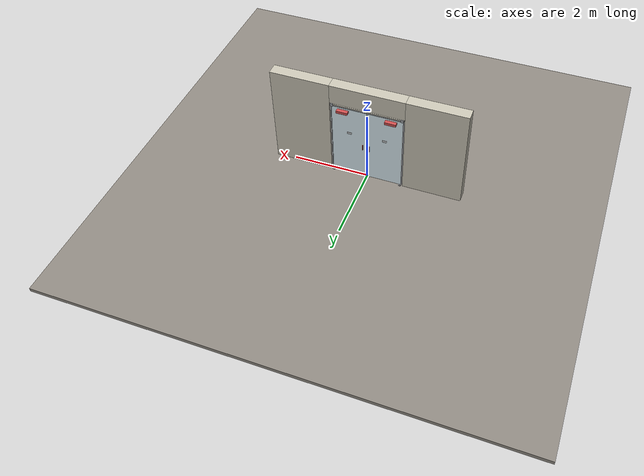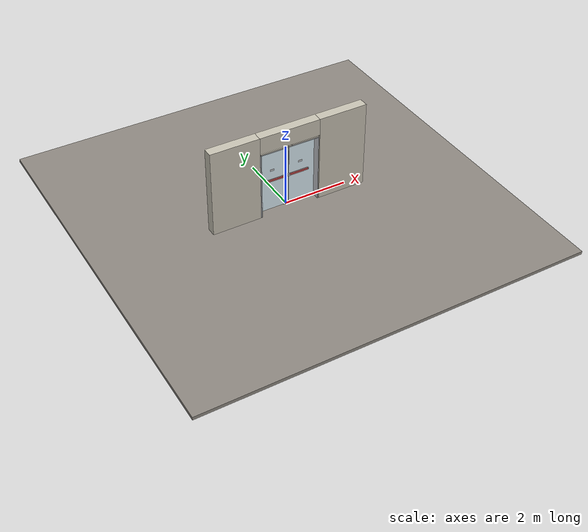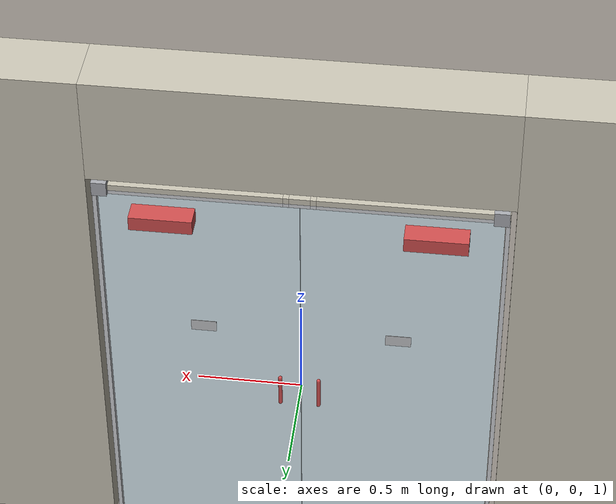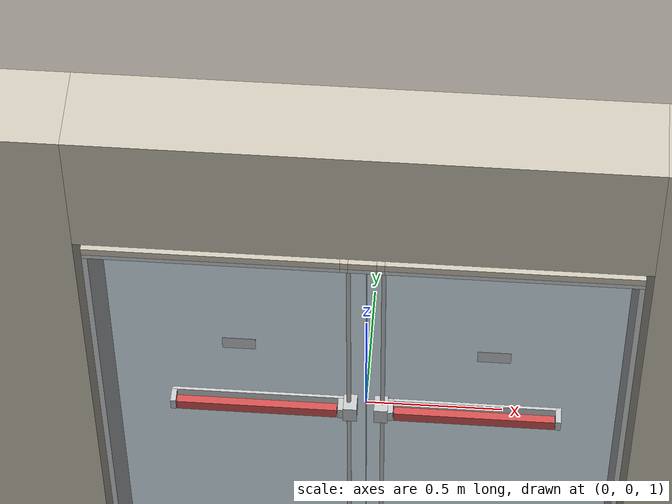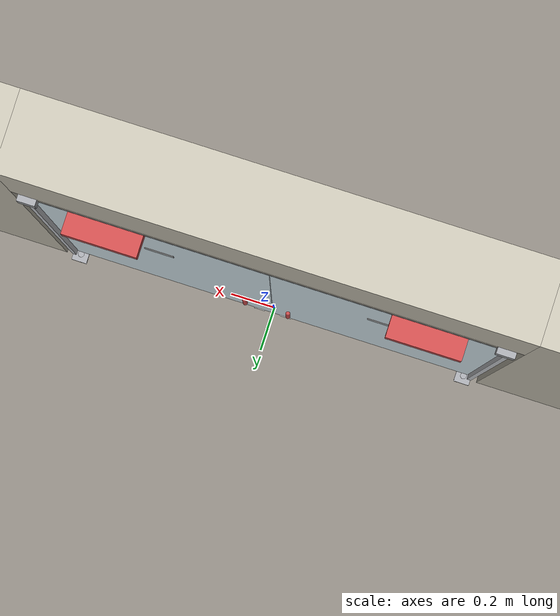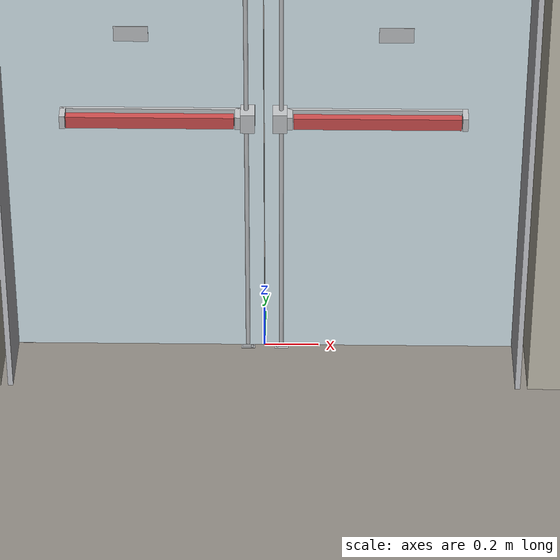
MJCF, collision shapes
<?xml version="1.0" ?>
<mujoco model="db0634_swing_double_full">
  <compiler angle="radian" meshdir="../../hardware" texturedir="../../textures" autolimits="true" inertiafromgeom="false"/>
  <option timestep="0.002" integrator="implicitfast" cone="elliptic" impratio="10" noslip_iterations="3">
    <flag multiccd="enable"/>
  </option>
  <size memory="16M"/>
  <default>
    <geom condim="4" solref="0.005 1" solimp="0.95 0.99 0.001"/>
    <joint solreflimit="0.005 1" solimplimit="0.95 0.99 0.001"/>
    <tendon solreflimit="0.005 1"/>
    <equality solref="0.002 1"/>
  </default>
  <visual>
    <headlight ambient="0.4 0.4 0.4" diffuse="0.7 0.7 0.7" specular="0.2 0.2 0.2"/>
    <quality shadowsize="4096"/>
    <map znear="0.01" zfar="60"/>
  </visual>
  <asset>
    <mesh name="closer_body_fdc4667657" file="closer_body_fdc4667657.obj"/>
    <mesh name="pull_1e5d69a91a" file="pull_1e5d69a91a.obj"/>
    <mesh name="touchbar_pad_2729a067b4" file="touchbar_pad_2729a067b4.obj"/>
    <material name="mat_floor" rgba="0.55 0.53 0.5 1" specular="0.2" shininess="0.15" reflectance="0"/>
    <material name="mat_wall" rgba="0.78 0.76 0.7 1" specular="0.2" shininess="0.1" reflectance="0"/>
    <material name="mat_leaf_a" rgba="0.85 0.92 0.95 0.25" specular="0.2" shininess="0.95" reflectance="0.1"/>
    <material name="mat_glass_leaf" rgba="0.85 0.92 0.95 0.25" specular="0.2" shininess="0.95" reflectance="0.1"/>
    <material name="mat_patch" rgba="0.75 0.76 0.77 1" specular="0.8" shininess="0.65" reflectance="0.4"/>
    <material name="mat_hinge" rgba="0.65 0.66 0.68 1" specular="0.74" shininess="0.5" reflectance="0.36"/>
    <material name="mat_op_stainless" rgba="0.75 0.76 0.77 1" specular="0.8" shininess="0.65" reflectance="0.4"/>
    <material name="mat_bolt" rgba="0.75 0.76 0.77 1" specular="0.8" shininess="0.65" reflectance="0.4"/>
    <material name="mat_closer" rgba="0.22 0.17 0.13 1" specular="0.8" shininess="0.6" reflectance="0.4"/>
    <material name="mat_sign" rgba="0.75 0.76 0.77 1" specular="0.8" shininess="0.65" reflectance="0.4"/>
    <material name="mat_leaf_b" rgba="0.85 0.92 0.95 0.25" specular="0.2" shininess="0.95" reflectance="0.1"/>
    <material name="mat_frame" rgba="0.8 0.81 0.83 1" specular="0.8" shininess="0.6" reflectance="0.4"/>
    <texture name="skybox" type="skybox" builtin="gradient" rgb1="0.6 0.7 0.85" rgb2="0.9 0.92 0.95" width="256" height="256"/>
  </asset>
  <worldbody>
    <light name="sun" pos="1.5 -2.5 4" dir="-0.3 0.5 -0.8" directional="true" diffuse="0.8 0.8 0.8" specular="0.3 0.3 0.3" castshadow="true"/>
    <light name="fill" pos="-1.5 2.5 3" dir="0.3 -0.5 -0.7" directional="true" diffuse="0.35 0.35 0.4" castshadow="false"/>
    <camera name="robot_view" pos="0 -2.745312 1.812087" xyaxes="1 0 0 0 0.26963 0.962964" fovy="52"/>
    <camera name="far_view" pos="0 2.530312 1.812087" xyaxes="-1 0 0 0 -0.26963 0.962964" fovy="52"/>
    <camera name="iso" pos="-2.004737 -2.323262 2.234138" xyaxes="0.741536 -0.670913 0 0.242917 0.268487 0.932151" fovy="46"/>
    <camera name="detail_handle" pos="0.0885 -0.7175 1.32" xyaxes="0.97561 0.219512 0 -0.070934 0.315262 0.94635" fovy="38"/>
    <geom name="floor" type="box" size="6 6 0.05" pos="0 0 -0.05" material="mat_floor" group="0" contype="1" conaffinity="1" friction="0.8 0.005 0.0001" density="2400"/>
    <geom name="wall_left" type="box" size="0.76825 0.15 1.3735" pos="-1.73175 -0.1075 1.3735" material="mat_wall" group="0" contype="1" conaffinity="1" friction="0.6 0.005 0.0001" density="800"/>
    <geom name="wall_right" type="box" size="0.76825 0.15 1.3735" pos="1.73175 -0.1075 1.3735" material="mat_wall" group="0" contype="1" conaffinity="1" friction="0.6 0.005 0.0001" density="800"/>
    <geom name="wall_header" type="box" size="0.9635 0.15 0.2625" pos="0 -0.1075 2.4845" material="mat_wall" group="0" contype="1" conaffinity="1" friction="0.6 0.005 0.0001" density="800"/>
    <geom name="pivot_bottom_socket" type="box" size="0.035 0.035 0.012" pos="-0.8995 0.0325 0.002" material="mat_hinge" group="1" contype="0" conaffinity="0" density="7850"/>
    <geom name="pivot_top_bracket" type="box" size="0.035 0.035 0.0355" pos="-0.8995 0.0325 2.1865" material="mat_hinge" group="1" contype="0" conaffinity="0" density="7850"/>
    <geom name="leaf_a_bottom_strike_plate" type="box" size="0.0255 0.0255 0.00075" pos="-0.0615 0 0.00075" material="mat_bolt" group="0" contype="1" conaffinity="1" friction="0.6 0.005 0.0001" density="7850"/>
    <geom name="leaf_a_bottom_strike_p" type="box" size="0.0215 0.004 0.00575" pos="-0.0615 0.0145 0.00725" material="mat_bolt" group="0" contype="1" conaffinity="1" friction="0.6 0.005 0.0001" density="7850"/>
    <geom name="leaf_a_bottom_strike_n" type="box" size="0.0215 0.004 0.00575" pos="-0.0615 -0.0145 0.00725" material="mat_bolt" group="0" contype="1" conaffinity="1" friction="0.6 0.005 0.0001" density="7850"/>
    <geom name="leaf_a_bottom_strike_e" type="box" size="0.004 0.0215 0.00575" pos="-0.047 0 0.00725" material="mat_bolt" group="0" contype="1" conaffinity="1" friction="0.6 0.005 0.0001" density="7850"/>
    <geom name="pivot_bottom_socket_2" type="box" size="0.035 0.035 0.012" pos="0.8995 0.0325 0.002" material="mat_hinge" group="1" contype="0" conaffinity="0" density="7850"/>
    <geom name="pivot_top_bracket_2" type="box" size="0.035 0.035 0.0355" pos="0.8995 0.0325 2.1865" material="mat_hinge" group="1" contype="0" conaffinity="0" density="7850"/>
    <geom name="leaf_b_bottom_strike_plate" type="box" size="0.0255 0.0255 0.00075" pos="0.0615 0 0.00075" material="mat_bolt" group="0" contype="1" conaffinity="1" friction="0.6 0.005 0.0001" density="7850"/>
    <geom name="leaf_b_bottom_strike_p" type="box" size="0.0215 0.004 0.00575" pos="0.0615 0.0145 0.00725" material="mat_bolt" group="0" contype="1" conaffinity="1" friction="0.6 0.005 0.0001" density="7850"/>
    <geom name="leaf_b_bottom_strike_n" type="box" size="0.0215 0.004 0.00575" pos="0.0615 -0.0145 0.00725" material="mat_bolt" group="0" contype="1" conaffinity="1" friction="0.6 0.005 0.0001" density="7850"/>
    <geom name="leaf_b_bottom_strike_e" type="box" size="0.004 0.0215 0.00575" pos="0.047 0 0.00725" material="mat_bolt" group="0" contype="1" conaffinity="1" friction="0.6 0.005 0.0001" density="7850"/>
    <geom name="jamb_l" type="box" size="0.0095 0.15 1.0735" pos="-0.928 -0.1075 1.0735" material="mat_frame" group="0" contype="1" conaffinity="1" friction="0.6 0.005 0.0001" density="300"/>
    <geom name="jamb_r" type="box" size="0.0095 0.15 1.0735" pos="0.928 -0.1075 1.0735" material="mat_frame" group="0" contype="1" conaffinity="1" friction="0.6 0.005 0.0001" density="300"/>
    <geom name="jamb_head_pwall_-61_n" type="box" size="0.0135 0.12325 0.0095" pos="-0.0615 -0.13425 2.1565" material="mat_frame" group="0" contype="1" conaffinity="1" friction="0.6 0.005 0.0001" density="300"/>
    <geom name="jamb_head_pwall_-61_p" type="box" size="0.0135 0.01575 0.0095" pos="-0.0615 0.02675 2.1565" material="mat_frame" group="0" contype="1" conaffinity="1" friction="0.6 0.005 0.0001" density="300"/>
    <geom name="jamb_head_pwall_61_n" type="box" size="0.0135 0.12325 0.0095" pos="0.0615 -0.13425 2.1565" material="mat_frame" group="0" contype="1" conaffinity="1" friction="0.6 0.005 0.0001" density="300"/>
    <geom name="jamb_head_pwall_61_p" type="box" size="0.0135 0.01575 0.0095" pos="0.0615 0.02675 2.1565" material="mat_frame" group="0" contype="1" conaffinity="1" friction="0.6 0.005 0.0001" density="300"/>
    <geom name="jamb_head_0" type="box" size="0.43125 0.15 0.0095" pos="-0.50625 -0.1075 2.1565" material="mat_frame" group="0" contype="1" conaffinity="1" friction="0.6 0.005 0.0001" density="300"/>
    <geom name="jamb_head_1" type="box" size="0.048 0.15 0.0095" pos="0 -0.1075 2.1565" material="mat_frame" group="0" contype="1" conaffinity="1" friction="0.6 0.005 0.0001" density="300"/>
    <geom name="jamb_head_2" type="box" size="0.43125 0.15 0.0095" pos="0.50625 -0.1075 2.1565" material="mat_frame" group="0" contype="1" conaffinity="1" friction="0.6 0.005 0.0001" density="300"/>
    <geom name="head_stud_pwall_-61_n" type="box" size="0.0135 0.12325 0.015" pos="-0.0615 -0.13425 2.181" material="mat_wall" group="0" contype="1" conaffinity="1" friction="0.6 0.005 0.0001" density="500"/>
    <geom name="head_stud_pwall_-61_p" type="box" size="0.0135 0.01575 0.015" pos="-0.0615 0.02675 2.181" material="mat_wall" group="0" contype="1" conaffinity="1" friction="0.6 0.005 0.0001" density="500"/>
    <geom name="head_stud_pback_-61" type="box" size="0.0135 0.011 0.013" pos="-0.0615 0 2.183" material="mat_wall" group="0" contype="1" conaffinity="1" friction="0.6 0.005 0.0001" density="500"/>
    <geom name="head_stud_pwall_61_n" type="box" size="0.0135 0.12325 0.015" pos="0.0615 -0.13425 2.181" material="mat_wall" group="0" contype="1" conaffinity="1" friction="0.6 0.005 0.0001" density="500"/>
    <geom name="head_stud_pwall_61_p" type="box" size="0.0135 0.01575 0.015" pos="0.0615 0.02675 2.181" material="mat_wall" group="0" contype="1" conaffinity="1" friction="0.6 0.005 0.0001" density="500"/>
    <geom name="head_stud_pback_61" type="box" size="0.0135 0.011 0.013" pos="0.0615 0 2.183" material="mat_wall" group="0" contype="1" conaffinity="1" friction="0.6 0.005 0.0001" density="500"/>
    <geom name="head_stud_0" type="box" size="0.43125 0.15 0.015" pos="-0.50625 -0.1075 2.181" material="mat_wall" group="0" contype="1" conaffinity="1" friction="0.6 0.005 0.0001" density="500"/>
    <geom name="head_stud_1" type="box" size="0.048 0.15 0.015" pos="0 -0.1075 2.181" material="mat_wall" group="0" contype="1" conaffinity="1" friction="0.6 0.005 0.0001" density="500"/>
    <geom name="head_stud_2" type="box" size="0.43125 0.15 0.015" pos="0.50625 -0.1075 2.181" material="mat_wall" group="0" contype="1" conaffinity="1" friction="0.6 0.005 0.0001" density="500"/>
    <site name="approach_point" pos="0 -1.5 0" quat="1 0 0 0" size="0.05" rgba="0.2 0.9 0.2 0.5" group="4"/>
    <site name="goal_point" pos="0 1.5 0" quat="1 0 0 0" size="0.05" rgba="0.2 0.9 0.2 0.5" group="4"/>
    <site name="door_plane_center" pos="0 0 1.0735" quat="1 0 0 0" size="0.02" rgba="0.2 0.9 0.2 0.5" group="4"/>
    <site name="approach_point_2" pos="0 -1.5 0" quat="1 0 0 0" size="0.05" rgba="0.2 0.9 0.2 0.5" group="4"/>
    <site name="goal_point_2" pos="0 1.5 0" quat="1 0 0 0" size="0.05" rgba="0.2 0.9 0.2 0.5" group="4"/>
    <site name="door_plane_center_2" pos="0 0 1.0735" quat="1 0 0 0" size="0.02" rgba="0.2 0.9 0.2 0.5" group="4"/>
    <site name="approach_point_3" pos="0 -1.5 0" quat="1 0 0 0" size="0.05" rgba="0.2 0.9 0.2 0.5" group="4"/>
    <site name="goal_point_3" pos="0 1.5 0" quat="1 0 0 0" size="0.05" rgba="0.2 0.9 0.2 0.5" group="4"/>
    <site name="door_plane_center_3" pos="0 0 1.0735" quat="1 0 0 0" size="0.02" rgba="0.2 0.9 0.2 0.5" group="4"/>
    <body name="leaf_a" pos="-0.9185 0 0">
      <inertial pos="0.454124 0.008662 1.226113" mass="99.12071" quat="-0.471093 0.496604 0.513367 0.5176" diaginertia="6.644286557 42.826254287 49.294823281"/>
      <joint name="leaf_a_hinge" type="hinge" axis="0 0 1" pos="0.019 0.0325 0" limited="true" range="0 1.570796" damping="12.268966" frictionloss="1.07718" stiffness="29.195383" springref="-2.330505" armature="0.02"/>
      <geom name="leaf_a_glass" type="box" size="0.457 0.0225 1.0635" pos="0.46 0 1.0795" material="mat_glass_leaf" group="0" contype="1" conaffinity="1" friction="0.4 0.005 0.0001" density="1"/>
      <geom name="pivot_bottom" type="cylinder" size="0.014 0.004" pos="0.019 0.0325 0.011" material="mat_hinge" group="1" contype="0" conaffinity="0" density="7850"/>
      <geom name="pivot_top" type="cylinder" size="0.014 0.004" pos="0.019 0.0325 2.147" material="mat_hinge" group="1" contype="0" conaffinity="0" density="7850"/>
      <geom name="leaf_a_exit_device_rail" type="box" size="0.31705 0.006 0.025" pos="0.51995 -0.0285 1.04" material="mat_op_stainless" group="0" contype="1" conaffinity="1" friction="0.6 0.005 0.0001" density="3000"/>
      <geom name="leaf_a_exit_device_rail_end_n" type="box" size="0.01 0.0325 0.025" pos="0.2129 -0.055 1.04" material="mat_op_stainless" group="0" contype="1" conaffinity="1" friction="0.6 0.005 0.0001" density="3000"/>
      <geom name="leaf_a_exit_device_rail_end_p" type="box" size="0.01 0.0325 0.025" pos="0.827 -0.055 1.04" material="mat_op_stainless" group="0" contype="1" conaffinity="1" friction="0.6 0.005 0.0001" density="3000"/>
      <geom name="leaf_a_exit_device_case" type="box" size="0.025 0.034125 0.0375" pos="0.862 -0.056625 1.04" material="mat_op_stainless" group="0" contype="1" conaffinity="1" friction="0.6 0.005 0.0001" density="3000"/>
      <geom name="leaf_a_exit_device_rod_top" type="cylinder" size="0.008 0.51775" pos="0.857 -0.0525 1.59525" material="mat_op_stainless" group="1" contype="0" conaffinity="0" density="7850"/>
      <geom name="leaf_a_exit_device_rod_bot" type="cylinder" size="0.008 0.47825" pos="0.857 -0.0525 0.52425" material="mat_op_stainless" group="1" contype="0" conaffinity="0" density="7850"/>
      <geom name="leaf_a_far_pull_p" type="mesh" mesh="pull_1e5d69a91a" pos="0.827 0.0225 1.04" quat="-0.707107 0.707107 0 0" material="mat_op_stainless" group="1" contype="0" conaffinity="0" density="3000"/>
      <geom name="leaf_a_far_pull_col_p" type="capsule" size="0.0095 0.08" pos="0.827 0.0825 1.04" material="mat_op_stainless" group="3" contype="1" conaffinity="1" rgba="0.8 0.3 0.3 0.25" friction="0.7 0.01 0.0001" density="3000"/>
      <geom name="closer_body" type="mesh" mesh="closer_body_fdc4667657" pos="0.3 0.0225 2.047" quat="-0.707107 0.707107 0 0" material="mat_closer" group="1" contype="0" conaffinity="0" density="2000"/>
      <geom name="closer_body_col" type="box" size="0.145 0.05 0.035" pos="0.3 0.0725 2.047" material="mat_closer" group="3" contype="1" conaffinity="1" rgba="0.8 0.3 0.3 0.25" friction="0.6 0.005 0.0001" density="2000"/>
      <geom name="sign_push" type="box" size="0.06 0.001 0.03" pos="0.46 -0.0235 1.366" material="mat_sign" group="2" contype="0" conaffinity="0" density="7900"/>
      <geom name="sign_pull" type="box" size="0.06 0.001 0.03" pos="0.46 0.0235 1.366" material="mat_sign" group="2" contype="0" conaffinity="0" density="7900"/>
      <site name="leaf_a_far_pull_grip_p" pos="0.827 0.0825 1.04" quat="1 0 0 0" size="0.012" rgba="0.2 0.9 0.2 0.5" group="4"/>
      <site name="leaf_a_edge_mid" pos="0.917 0 1.0635" quat="1 0 0 0" size="0.02" rgba="0.2 0.9 0.2 0.5" group="4"/>
      <body name="leaf_a_exit_device" pos="0.51995 -0.0225 1.04">
        <inertial pos="0 -0.05 0" mass="4.76361" quat="0 0 0.707107 0.707107" diaginertia="0.00116113 0.137653089 0.138099678"/>
        <joint name="leaf_a_exit_device_slide" type="slide" axis="0 1 0" limited="true" range="0 0.016" damping="165.880125" frictionloss="0.5" stiffness="1400" springref="-0.015714" armature="0.15"/>
        <geom name="leaf_a_exit_device_pad" type="mesh" mesh="touchbar_pad_2729a067b4" pos="0 0 0" quat="0.707107 0.707107 0 0" material="mat_op_stainless" group="1" contype="0" conaffinity="0" density="3000"/>
        <geom name="leaf_a_exit_device_pad_col" type="box" size="0.29405 0.015 0.0225" pos="0 -0.05 0" material="mat_op_stainless" group="3" contype="1" conaffinity="1" rgba="0.8 0.3 0.3 0.25" friction="0.8 0.01 0.0001" density="3000"/>
        <site name="leaf_a_exit_device_push" pos="0 -0.065 0" quat="1 0 0 0" size="0.015" rgba="0.2 0.9 0.2 0.5" group="4"/>
      </body>
      <body name="leaf_a_top_latch" pos="0.857 0 2.143">
        <inertial pos="0 0 -0.0155" mass="0.151026" quat="0.707107 0 0.707107 0" diaginertia="0.00000654 0.000053442 0.000053442"/>
        <joint name="leaf_a_top_latch_slide" type="slide" axis="0 0 -1" limited="true" range="0 0.019" damping="2" frictionloss="0.3" stiffness="800" springref="-0.01" armature="0.1"/>
        <geom name="leaf_a_top_latch_capsule" type="capsule" size="0.0095 0.025" pos="0 0 -0.0155" material="mat_bolt" group="0" contype="1" conaffinity="1" friction="0.2 0.005 0.0001" density="8500"/>
      </body>
      <body name="leaf_a_bottom_latch" pos="0.857 0 0.03">
        <inertial pos="0 0 0.012" mass="0.167896" quat="0.707107 0 0.707107 0" diaginertia="0.000007301 0.000072388 0.000072388"/>
        <joint name="leaf_a_bottom_latch_slide" type="slide" axis="0 0 1" limited="true" range="0 0.026" damping="2" frictionloss="0.3" stiffness="800" springref="-0.01" armature="0.1"/>
        <geom name="leaf_a_bottom_latch_capsule" type="capsule" size="0.0095 0.0285" pos="0 0 0.012" material="mat_bolt" group="0" contype="1" conaffinity="1" friction="0.2 0.005 0.0001" density="8500"/>
      </body>
    </body>
    <body name="leaf_b" pos="0.9185 0 0">
      <inertial pos="-0.454124 0.008662 1.226113" mass="99.12071" quat="0.5176 -0.513367 -0.496604 -0.471093" diaginertia="6.644286557 42.826254287 49.294823281"/>
      <joint name="leaf_b_hinge" type="hinge" axis="0 0 -1" pos="-0.019 0.0325 0" limited="true" range="0 1.570796" damping="12.268966" frictionloss="1.07718" stiffness="29.195383" springref="-2.330505" armature="0.02"/>
      <geom name="leaf_b_glass" type="box" size="0.457 0.0225 1.0635" pos="-0.46 0 1.0795" material="mat_glass_leaf" group="0" contype="1" conaffinity="1" friction="0.4 0.005 0.0001" density="1"/>
      <geom name="pivot_bottom_2" type="cylinder" size="0.014 0.004" pos="-0.019 0.0325 0.011" material="mat_hinge" group="1" contype="0" conaffinity="0" density="7850"/>
      <geom name="pivot_top_2" type="cylinder" size="0.014 0.004" pos="-0.019 0.0325 2.147" material="mat_hinge" group="1" contype="0" conaffinity="0" density="7850"/>
      <geom name="leaf_b_exit_device_rail" type="box" size="0.31705 0.006 0.025" pos="-0.51995 -0.0285 1.04" material="mat_op_stainless" group="0" contype="1" conaffinity="1" friction="0.6 0.005 0.0001" density="3000"/>
      <geom name="leaf_b_exit_device_rail_end_n" type="box" size="0.01 0.0325 0.025" pos="-0.827 -0.055 1.04" material="mat_op_stainless" group="0" contype="1" conaffinity="1" friction="0.6 0.005 0.0001" density="3000"/>
      <geom name="leaf_b_exit_device_rail_end_p" type="box" size="0.01 0.0325 0.025" pos="-0.2129 -0.055 1.04" material="mat_op_stainless" group="0" contype="1" conaffinity="1" friction="0.6 0.005 0.0001" density="3000"/>
      <geom name="leaf_b_exit_device_case" type="box" size="0.025 0.034125 0.0375" pos="-0.862 -0.056625 1.04" material="mat_op_stainless" group="0" contype="1" conaffinity="1" friction="0.6 0.005 0.0001" density="3000"/>
      <geom name="leaf_b_exit_device_rod_top" type="cylinder" size="0.008 0.51775" pos="-0.857 -0.0525 1.59525" material="mat_op_stainless" group="1" contype="0" conaffinity="0" density="7850"/>
      <geom name="leaf_b_exit_device_rod_bot" type="cylinder" size="0.008 0.47825" pos="-0.857 -0.0525 0.52425" material="mat_op_stainless" group="1" contype="0" conaffinity="0" density="7850"/>
      <geom name="leaf_b_far_pull_p" type="mesh" mesh="pull_1e5d69a91a" pos="-0.827 0.0225 1.04" quat="0 0 0.707107 0.707107" material="mat_op_stainless" group="1" contype="0" conaffinity="0" density="3000"/>
      <geom name="leaf_b_far_pull_col_p" type="capsule" size="0.0095 0.08" pos="-0.827 0.0825 1.04" material="mat_op_stainless" group="3" contype="1" conaffinity="1" rgba="0.8 0.3 0.3 0.25" friction="0.7 0.01 0.0001" density="3000"/>
      <geom name="closer_body_2" type="mesh" mesh="closer_body_fdc4667657" pos="-0.3 0.0225 2.047" quat="0 0 0.707107 0.707107" material="mat_closer" group="1" contype="0" conaffinity="0" density="2000"/>
      <geom name="closer_body_col_2" type="box" size="0.145 0.05 0.035" pos="-0.3 0.0725 2.047" material="mat_closer" group="3" contype="1" conaffinity="1" rgba="0.8 0.3 0.3 0.25" friction="0.6 0.005 0.0001" density="2000"/>
      <geom name="sign_push_2" type="box" size="0.06 0.001 0.03" pos="-0.46 -0.0235 1.366" material="mat_sign" group="2" contype="0" conaffinity="0" density="7900"/>
      <geom name="sign_pull_2" type="box" size="0.06 0.001 0.03" pos="-0.46 0.0235 1.366" material="mat_sign" group="2" contype="0" conaffinity="0" density="7900"/>
      <site name="leaf_b_far_pull_grip_p" pos="-0.827 0.0825 1.04" quat="1 0 0 0" size="0.012" rgba="0.2 0.9 0.2 0.5" group="4"/>
      <site name="leaf_b_edge_mid" pos="-0.917 0 1.0635" quat="1 0 0 0" size="0.02" rgba="0.2 0.9 0.2 0.5" group="4"/>
      <body name="leaf_b_exit_device" pos="-0.51995 -0.0225 1.04">
        <inertial pos="0 -0.05 0" mass="4.76361" quat="0 0 -0.707107 0.707107" diaginertia="0.00116113 0.137653089 0.138099678"/>
        <joint name="leaf_b_exit_device_slide" type="slide" axis="0 1 0" limited="true" range="0 0.016" damping="165.880125" frictionloss="0.5" stiffness="1400" springref="-0.015714" armature="0.15"/>
        <geom name="leaf_b_exit_device_pad" type="mesh" mesh="touchbar_pad_2729a067b4" pos="0 0 0" quat="0 0 -0.707107 0.707107" material="mat_op_stainless" group="1" contype="0" conaffinity="0" density="3000"/>
        <geom name="leaf_b_exit_device_pad_col" type="box" size="0.29405 0.015 0.0225" pos="0 -0.05 0" material="mat_op_stainless" group="3" contype="1" conaffinity="1" rgba="0.8 0.3 0.3 0.25" friction="0.8 0.01 0.0001" density="3000"/>
        <site name="leaf_b_exit_device_push" pos="0 -0.065 0" quat="1 0 0 0" size="0.015" rgba="0.2 0.9 0.2 0.5" group="4"/>
      </body>
      <body name="leaf_b_top_latch" pos="-0.857 0 2.143">
        <inertial pos="0 0 -0.0155" mass="0.151026" quat="0.707107 0 0.707107 0" diaginertia="0.00000654 0.000053442 0.000053442"/>
        <joint name="leaf_b_top_latch_slide" type="slide" axis="0 0 -1" limited="true" range="0 0.019" damping="2" frictionloss="0.3" stiffness="800" springref="-0.01" armature="0.1"/>
        <geom name="leaf_b_top_latch_capsule" type="capsule" size="0.0095 0.025" pos="0 0 -0.0155" material="mat_bolt" group="0" contype="1" conaffinity="1" friction="0.2 0.005 0.0001" density="8500"/>
      </body>
      <body name="leaf_b_bottom_latch" pos="-0.857 0 0.03">
        <inertial pos="0 0 0.012" mass="0.167896" quat="0.707107 0 0.707107 0" diaginertia="0.000007301 0.000072388 0.000072388"/>
        <joint name="leaf_b_bottom_latch_slide" type="slide" axis="0 0 1" limited="true" range="0 0.026" damping="2" frictionloss="0.3" stiffness="800" springref="-0.01" armature="0.1"/>
        <geom name="leaf_b_bottom_latch_capsule" type="capsule" size="0.0095 0.0285" pos="0 0 0.012" material="mat_bolt" group="0" contype="1" conaffinity="1" friction="0.2 0.005 0.0001" density="8500"/>
      </body>
    </body>
  </worldbody>
  <tendon>
    <fixed name="leaf_a_top_latch_coupling" limited="true" range="0 10">
      <joint joint="leaf_a_top_latch_slide" coef="1"/>
      <joint joint="leaf_a_exit_device_slide" coef="-1.142857"/>
    </fixed>
    <fixed name="leaf_a_bottom_latch_coupling" limited="true" range="0 10">
      <joint joint="leaf_a_bottom_latch_slide" coef="1"/>
      <joint joint="leaf_a_exit_device_slide" coef="-1.56391"/>
    </fixed>
    <fixed name="leaf_b_top_latch_coupling" limited="true" range="0 10">
      <joint joint="leaf_b_top_latch_slide" coef="1"/>
      <joint joint="leaf_b_exit_device_slide" coef="-1.142857"/>
    </fixed>
    <fixed name="leaf_b_bottom_latch_coupling" limited="true" range="0 10">
      <joint joint="leaf_b_bottom_latch_slide" coef="1"/>
      <joint joint="leaf_b_exit_device_slide" coef="-1.56391"/>
    </fixed>
  </tendon>
  <sensor>
    <jointpos name="leaf_a_hinge_pos" joint="leaf_a_hinge"/>
    <jointvel name="leaf_a_hinge_vel" joint="leaf_a_hinge"/>
    <jointpos name="leaf_a_exit_device_slide_pos" joint="leaf_a_exit_device_slide"/>
    <jointvel name="leaf_a_exit_device_slide_vel" joint="leaf_a_exit_device_slide"/>
    <jointpos name="leaf_a_top_latch_slide_pos" joint="leaf_a_top_latch_slide"/>
    <jointvel name="leaf_a_top_latch_slide_vel" joint="leaf_a_top_latch_slide"/>
    <jointpos name="leaf_a_bottom_latch_slide_pos" joint="leaf_a_bottom_latch_slide"/>
    <jointvel name="leaf_a_bottom_latch_slide_vel" joint="leaf_a_bottom_latch_slide"/>
    <jointpos name="leaf_b_hinge_pos" joint="leaf_b_hinge"/>
    <jointvel name="leaf_b_hinge_vel" joint="leaf_b_hinge"/>
    <jointpos name="leaf_b_exit_device_slide_pos" joint="leaf_b_exit_device_slide"/>
    <jointvel name="leaf_b_exit_device_slide_vel" joint="leaf_b_exit_device_slide"/>
    <jointpos name="leaf_b_top_latch_slide_pos" joint="leaf_b_top_latch_slide"/>
    <jointvel name="leaf_b_top_latch_slide_vel" joint="leaf_b_top_latch_slide"/>
    <jointpos name="leaf_b_bottom_latch_slide_pos" joint="leaf_b_bottom_latch_slide"/>
    <jointvel name="leaf_b_bottom_latch_slide_vel" joint="leaf_b_bottom_latch_slide"/>
  </sensor>
</mujoco>
